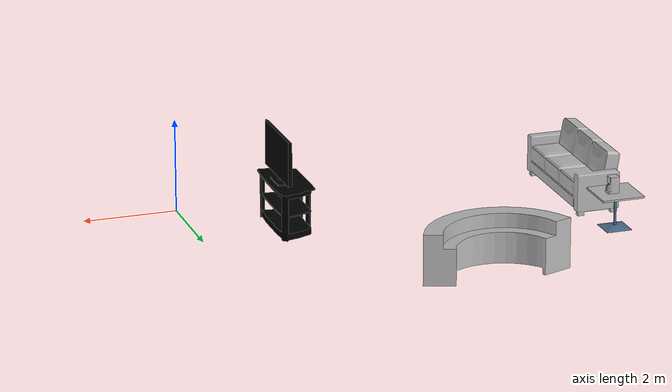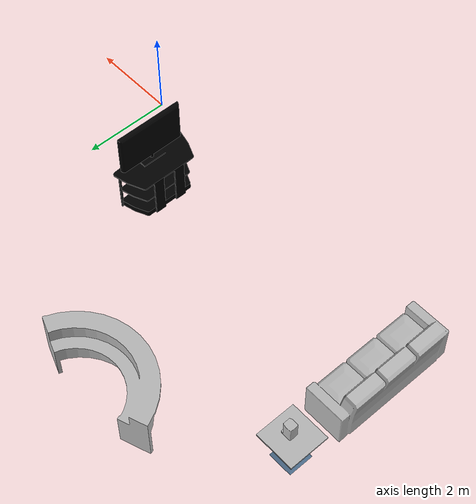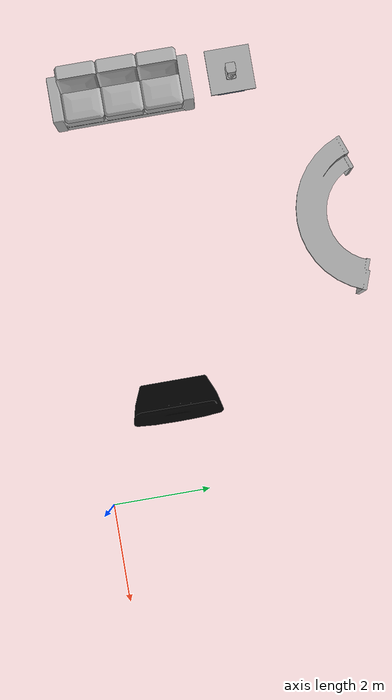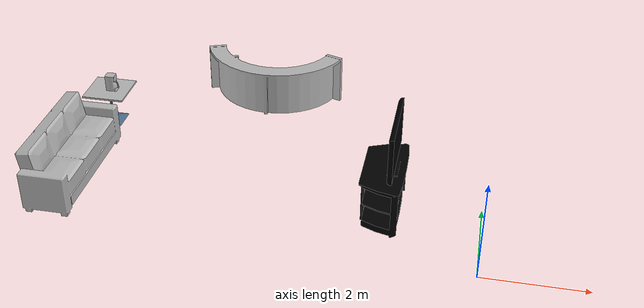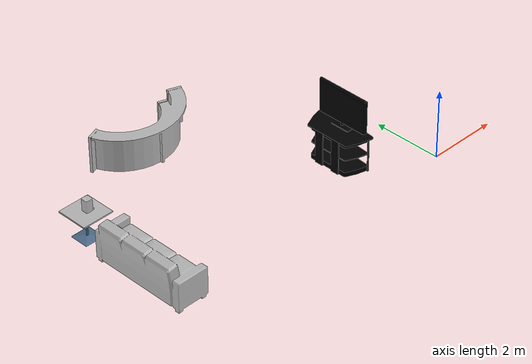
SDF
<?xml version='1.0'?>
<sdf version='1.6'>
  <model name='reception'>
    <link name='couch_1::link'>
      <pose frame=''>-7.9 1.6 0 0 -0 1.5708</pose>
      <self_collide>0</self_collide>
      <enable_wind>0</enable_wind>
      <kinematic>0</kinematic>
      <visual name='visual'>
        <geometry>
          <mesh>
            <uri>model://office_couch/meshes/office_couch.dae</uri>
            <scale>1.4 1.4 1.4</scale>
          </mesh>
        </geometry>
        <material>
          <shader type='pixel'/>
        </material>
        <pose frame=''>0 0 0 0 -0 0</pose>
        <transparency>0</transparency>
        <cast_shadows>1</cast_shadows>
      </visual>
      <collision name='collision'>
        <laser_retro>0</laser_retro>
        <max_contacts>10</max_contacts>
        <pose frame=''>0.000893 0.384169 0.704321 0 -0 0</pose>
        <geometry>
          <box>
            <size>2.91435 0.976328 1.41768</size>
          </box>
        </geometry>
        <surface>
          <friction>
            <ode>
              <mu>1</mu>
              <mu2>1</mu2>
              <fdir1>0 0 0</fdir1>
              <slip1>0</slip1>
              <slip2>0</slip2>
            </ode>
            <torsional>
              <coefficient>1</coefficient>
              <patch_radius>0</patch_radius>
              <surface_radius>0</surface_radius>
              <use_patch_radius>1</use_patch_radius>
              <ode>
                <slip>0</slip>
              </ode>
            </torsional>
          </friction>
          <bounce>
            <restitution_coefficient>0</restitution_coefficient>
            <threshold>1e+06</threshold>
          </bounce>
          <contact>
            <collide_without_contact>0</collide_without_contact>
            <collide_without_contact_bitmask>1</collide_without_contact_bitmask>
            <collide_bitmask>1</collide_bitmask>
            <ode>
              <soft_cfm>0</soft_cfm>
              <soft_erp>0.2</soft_erp>
              <kp>1e+13</kp>
              <kd>1</kd>
              <max_vel>0.01</max_vel>
              <min_depth>0</min_depth>
            </ode>
            <bullet>
              <split_impulse>1</split_impulse>
              <split_impulse_penetration_threshold>-0.01</split_impulse_penetration_threshold>
              <soft_cfm>0</soft_cfm>
              <soft_erp>0.2</soft_erp>
              <kp>1e+13</kp>
              <kd>1</kd>
            </bullet>
          </contact>
        </surface>
      </collision>
    </link>
    <link name='coffee_maker::link'>
      <pose frame=''>-8.25 3.85 0.77 0 -0 1.5708</pose>
      <self_collide>0</self_collide>
      <enable_wind>0</enable_wind>
      <kinematic>0</kinematic>
      <visual name='visual'>
        <geometry>
          <mesh>
            <uri>model://coffee_maker/meshes/coffee_maker.obj</uri>
            <scale>0.01 0.01 0.01</scale>
          </mesh>
        </geometry>
        <material>
          <shader type='pixel'/>
        </material>
        <pose frame=''>0 0 0 0 -0 0</pose>
        <transparency>0</transparency>
        <cast_shadows>1</cast_shadows>
      </visual>
    </link>
    <link name='office_cafe_table::link'>
      <pose frame=''>-8.3 3.85 0 0 -0 0</pose>
      <self_collide>0</self_collide>
      <enable_wind>0</enable_wind>
      <kinematic>0</kinematic>
      <visual name='visual'>
        <geometry>
          <mesh>
            <uri>model://office_cafe_table/meshes/office_cafe_table.dae</uri>
          </mesh>
        </geometry>
        <material>
          <shader type='pixel'/>
        </material>
        <pose frame=''>0 0 0 0 -0 0</pose>
        <transparency>0</transparency>
        <cast_shadows>1</cast_shadows>
      </visual>
      <collision name='surface'>
        <laser_retro>0</laser_retro>
        <max_contacts>10</max_contacts>
        <pose frame=''>0 0 0.755 0 -0 0</pose>
        <geometry>
          <box>
            <size>0.913 0.913 0.04</size>
          </box>
        </geometry>
        <surface>
          <friction>
            <ode>
              <mu>1</mu>
              <mu2>1</mu2>
              <fdir1>0 0 0</fdir1>
              <slip1>0</slip1>
              <slip2>0</slip2>
            </ode>
            <torsional>
              <coefficient>1</coefficient>
              <patch_radius>0</patch_radius>
              <surface_radius>0</surface_radius>
              <use_patch_radius>1</use_patch_radius>
              <ode>
                <slip>0</slip>
              </ode>
            </torsional>
          </friction>
          <bounce>
            <restitution_coefficient>0</restitution_coefficient>
            <threshold>1e+06</threshold>
          </bounce>
          <contact>
            <collide_without_contact>0</collide_without_contact>
            <collide_without_contact_bitmask>1</collide_without_contact_bitmask>
            <collide_bitmask>1</collide_bitmask>
            <ode>
              <soft_cfm>0</soft_cfm>
              <soft_erp>0.2</soft_erp>
              <kp>1e+13</kp>
              <kd>1</kd>
              <max_vel>0.01</max_vel>
              <min_depth>0</min_depth>
            </ode>
            <bullet>
              <split_impulse>1</split_impulse>
              <split_impulse_penetration_threshold>-0.01</split_impulse_penetration_threshold>
              <soft_cfm>0</soft_cfm>
              <soft_erp>0.2</soft_erp>
              <kp>1e+13</kp>
              <kd>1</kd>
            </bullet>
          </contact>
        </surface>
      </collision>
      <collision name='base'>
        <laser_retro>0</laser_retro>
        <max_contacts>10</max_contacts>
        <pose frame=''>0 0 0.02 0 -0 0</pose>
        <geometry>
          <box>
            <size>0.56 0.56 0.04</size>
          </box>
        </geometry>
        <surface>
          <friction>
            <ode>
              <mu>1</mu>
              <mu2>1</mu2>
              <fdir1>0 0 0</fdir1>
              <slip1>0</slip1>
              <slip2>0</slip2>
            </ode>
            <torsional>
              <coefficient>1</coefficient>
              <patch_radius>0</patch_radius>
              <surface_radius>0</surface_radius>
              <use_patch_radius>1</use_patch_radius>
              <ode>
                <slip>0</slip>
              </ode>
            </torsional>
          </friction>
          <bounce>
            <restitution_coefficient>0</restitution_coefficient>
            <threshold>1e+06</threshold>
          </bounce>
          <contact>
            <collide_without_contact>0</collide_without_contact>
            <collide_without_contact_bitmask>1</collide_without_contact_bitmask>
            <collide_bitmask>1</collide_bitmask>
            <ode>
              <soft_cfm>0</soft_cfm>
              <soft_erp>0.2</soft_erp>
              <kp>1e+13</kp>
              <kd>1</kd>
              <max_vel>0.01</max_vel>
              <min_depth>0</min_depth>
            </ode>
            <bullet>
              <split_impulse>1</split_impulse>
              <split_impulse_penetration_threshold>-0.01</split_impulse_penetration_threshold>
              <soft_cfm>0</soft_cfm>
              <soft_erp>0.2</soft_erp>
              <kp>1e+13</kp>
              <kd>1</kd>
            </bullet>
          </contact>
        </surface>
      </collision>
      <collision name='column'>
        <laser_retro>0</laser_retro>
        <max_contacts>10</max_contacts>
        <pose frame=''>0 0 0.37 0 -0 0</pose>
        <geometry>
          <box>
            <size>0.042 0.042 0.74</size>
          </box>
        </geometry>
        <surface>
          <friction>
            <ode>
              <mu>1</mu>
              <mu2>1</mu2>
              <fdir1>0 0 0</fdir1>
              <slip1>0</slip1>
              <slip2>0</slip2>
            </ode>
            <torsional>
              <coefficient>1</coefficient>
              <patch_radius>0</patch_radius>
              <surface_radius>0</surface_radius>
              <use_patch_radius>1</use_patch_radius>
              <ode>
                <slip>0</slip>
              </ode>
            </torsional>
          </friction>
          <bounce>
            <restitution_coefficient>0</restitution_coefficient>
            <threshold>1e+06</threshold>
          </bounce>
          <contact>
            <collide_without_contact>0</collide_without_contact>
            <collide_without_contact_bitmask>1</collide_without_contact_bitmask>
            <collide_bitmask>1</collide_bitmask>
            <ode>
              <soft_cfm>0</soft_cfm>
              <soft_erp>0.2</soft_erp>
              <kp>1e+13</kp>
              <kd>1</kd>
              <max_vel>0.01</max_vel>
              <min_depth>0</min_depth>
            </ode>
            <bullet>
              <split_impulse>1</split_impulse>
              <split_impulse_penetration_threshold>-0.01</split_impulse_penetration_threshold>
              <soft_cfm>0</soft_cfm>
              <soft_erp>0.2</soft_erp>
              <kp>1e+13</kp>
              <kd>1</kd>
            </bullet>
          </contact>
        </surface>
      </collision>
    </link>
    <link name='reception_desk::link'>
      <pose frame=''>-4.97756 6.27039 0 0 -0 0</pose>
      <self_collide>0</self_collide>
      <enable_wind>0</enable_wind>
      <kinematic>0</kinematic>
      <gravity>1</gravity>
      <inertial>
        <mass>1</mass>
        <pose frame=''>0 0 0 0 -0 0</pose>
        <inertia>
          <ixx>1</ixx>
          <ixy>0</ixy>
          <ixz>0</ixz>
          <iyy>1</iyy>
          <iyz>0</iyz>
          <izz>1</izz>
        </inertia>
      </inertial>
      <visual name='visual'>
        <geometry>
          <mesh>
            <uri>model://reception_desk/meshes/reception_desk.obj</uri>
            <scale>0.01 0.01 0.01</scale>
          </mesh>
        </geometry>
        <material>
          <shader type='pixel'>
            <normal_map>__default__</normal_map>
          </shader>
        </material>
        <pose frame=''>0 0 0 0 -0 0</pose>
        <transparency>0</transparency>
        <cast_shadows>1</cast_shadows>
      </visual>
      <collision name='collision'>
        <laser_retro>0</laser_retro>
        <max_contacts>10</max_contacts>
        <pose frame=''>0 0 0 0 -0 0</pose>
        <geometry>
          <mesh>
            <uri>/home/karen/retail_ws/src/retail_store_simulation/models/reception_desk/meshes/reception_desk.obj</uri>
            <scale>0.01 0.01 0.01</scale>
          </mesh>
        </geometry>
        <surface>
          <friction>
            <ode>
              <mu>1</mu>
              <mu2>1</mu2>
              <fdir1>0 0 0</fdir1>
              <slip1>0</slip1>
              <slip2>0</slip2>
            </ode>
            <torsional>
              <coefficient>1</coefficient>
              <patch_radius>0</patch_radius>
              <surface_radius>0</surface_radius>
              <use_patch_radius>1</use_patch_radius>
              <ode>
                <slip>0</slip>
              </ode>
            </torsional>
          </friction>
          <bounce>
            <restitution_coefficient>0</restitution_coefficient>
            <threshold>1e+06</threshold>
          </bounce>
          <contact>
            <collide_without_contact>0</collide_without_contact>
            <collide_without_contact_bitmask>1</collide_without_contact_bitmask>
            <collide_bitmask>1</collide_bitmask>
            <ode>
              <soft_cfm>0</soft_cfm>
              <soft_erp>0.2</soft_erp>
              <kp>1e+13</kp>
              <kd>1</kd>
              <max_vel>0.01</max_vel>
              <min_depth>0</min_depth>
            </ode>
            <bullet>
              <split_impulse>1</split_impulse>
              <split_impulse_penetration_threshold>-0.01</split_impulse_penetration_threshold>
              <soft_cfm>0</soft_cfm>
              <soft_erp>0.2</soft_erp>
              <kp>1e+13</kp>
              <kd>1</kd>
            </bullet>
          </contact>
        </surface>
      </collision>
    </link>
    <link name='tv_stand::link'>
      <pose frame=''>-1.93026 1.65375 0 0 -0 1.5708</pose>
      <self_collide>0</self_collide>
      <enable_wind>0</enable_wind>
      <kinematic>0</kinematic>
      <gravity>1</gravity>
      <inertial>
        <mass>1</mass>
        <pose frame=''>0 0 0 0 -0 0</pose>
        <inertia>
          <ixx>1</ixx>
          <ixy>0</ixy>
          <ixz>0</ixz>
          <iyy>1</iyy>
          <iyz>0</iyz>
          <izz>1</izz>
        </inertia>
      </inertial>
      <visual name='visual'>
        <geometry>
          <mesh>
            <uri>model://tv_stand/meshes/tv_stand.dae</uri>
            <scale>1.4 1.4 1.4</scale>
          </mesh>
        </geometry>
        <material>
          <shader type='pixel'>
            <normal_map>__default__</normal_map>
          </shader>
          <script>
            <name>ModelPreview_1::tv_stand::link::visual_MATERIAL_</name>
            <uri>__default__</uri>
          </script>
          <ambient>0 0 0 1</ambient>
          <diffuse>0 0 0 1</diffuse>
          <specular>0 0 0 1</specular>
          <emissive>0 0 0 1</emissive>
        </material>
        <pose frame=''>0 0 0 0 -0 0</pose>
        <transparency>0</transparency>
        <cast_shadows>1</cast_shadows>
      </visual>
      <collision name='collision'>
        <laser_retro>0</laser_retro>
        <max_contacts>10</max_contacts>
        <pose frame=''>0.00123 -0.018095 1.05314 0 -0 0</pose>
        <geometry>
          <box>
            <size>1.80204 0.803547 2.11292</size>
          </box>
        </geometry>
        <surface>
          <friction>
            <ode>
              <mu>1</mu>
              <mu2>1</mu2>
              <fdir1>0 0 0</fdir1>
              <slip1>0</slip1>
              <slip2>0</slip2>
            </ode>
            <torsional>
              <coefficient>1</coefficient>
              <patch_radius>0</patch_radius>
              <surface_radius>0</surface_radius>
              <use_patch_radius>1</use_patch_radius>
              <ode>
                <slip>0</slip>
              </ode>
            </torsional>
          </friction>
          <bounce>
            <restitution_coefficient>0</restitution_coefficient>
            <threshold>1e+06</threshold>
          </bounce>
          <contact>
            <collide_without_contact>0</collide_without_contact>
            <collide_without_contact_bitmask>1</collide_without_contact_bitmask>
            <collide_bitmask>1</collide_bitmask>
            <ode>
              <soft_cfm>0</soft_cfm>
              <soft_erp>0.2</soft_erp>
              <kp>1e+13</kp>
              <kd>1</kd>
              <max_vel>0.01</max_vel>
              <min_depth>0</min_depth>
            </ode>
            <bullet>
              <split_impulse>1</split_impulse>
              <split_impulse_penetration_threshold>-0.01</split_impulse_penetration_threshold>
              <soft_cfm>0</soft_cfm>
              <soft_erp>0.2</soft_erp>
              <kp>1e+13</kp>
              <kd>1</kd>
            </bullet>
          </contact>
        </surface>
      </collision>
    </link>
    <static>1</static>
    <allow_auto_disable>1</allow_auto_disable>
  </model>
</sdf>
